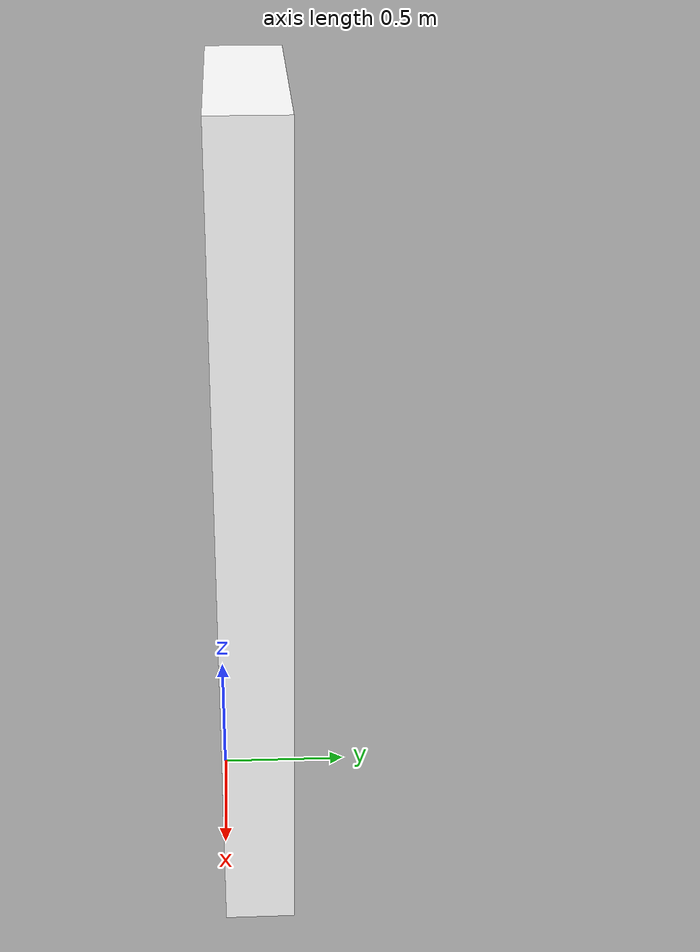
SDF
<?xml version="1.0" ?>
<sdf version="1.4">
  <model name="shelf">
    <static>0</static>
    <link name="link">

      <inertial>
        <mass>0.05</mass>
        <inertia>
          <ixx>>0.000052081</ixx>
          <ixy>0</ixy>
          <ixz>0</ixz>
          <iyy>>0.000052081</iyy>
          <iyz>0</iyz>
          <izz>>0.000052081</izz>
        </inertia>
      </inertial>

      <collision name="colision">
        <pose>0 0 0 0 0 0</pose>
          <geometry>
            <box>
              <size>1 1 0.0005</size>
            </box>
          </geometry>
        <surface>
          <friction>
            <ode>
              <mu>30.0</mu>
              <mu2>30.0</mu2>
              <fdir1>0 0 0</fdir1>
            </ode>
          </friction>
          <contact>
            <ode>
              <kp>1000000.0</kp>
              <kd>100.0</kd>
              <min_depth>0.0025</min_depth>
              <max_vel>1.0</max_vel>
            </ode>
          </contact>
        </surface>
      </collision>

      <visual name="visual1">
        <pose>0 0 0 0 0 0</pose>
        <geometry>
          <mesh>
            <uri>model://shelf/meshes/model.dae</uri>
	    <scale> 1 1 1.5 </scale>
          </mesh>
        </geometry>
      </visual>

      <velocity_decay>
        <linear>0.000000</linear>
        <angular>0.000000</angular>
      </velocity_decay>
      <self_collide>0</self_collide>
      <kinematic>0</kinematic>
      <gravity>1</gravity>
    </link>
  </model>
</sdf>
